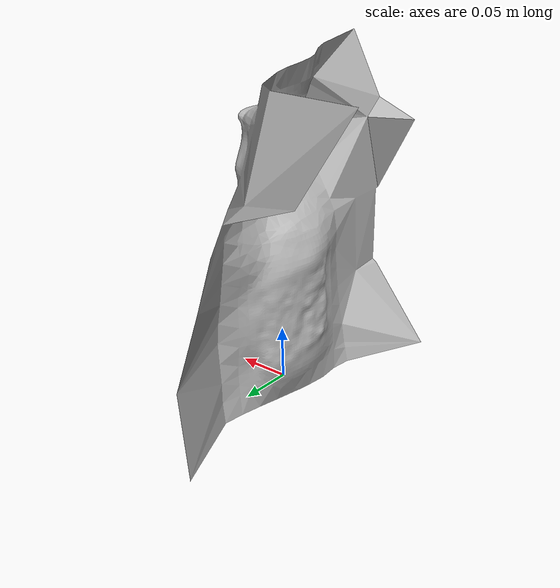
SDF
<?xml version='1.0'?>
<sdf version="1.4">
  <model name="windex">
    <static>false</static>
    <link name="link">
      <inertial>
        <pose>-0.04270418507612416 0.0006751401567584858 0.1551026171128228 0.8268738947145668 0.10950911108108015 -2.8773513822530123</pose>
        <mass>0.905584138520028</mass>
        <inertia>
          <ixx>0.012092499294843344</ixx>
          <ixy>4.401715175311332e-19</ixy>
          <ixz>7.145662604457673e-19</ixz>
          <iyy>0.007399296818931355</iyy>
          <iyz>2.1110740122018635e-18</iyz>
          <izz>0.006621209603735176</izz>
        </inertia>
      </inertial>
      <collision name="collision">
        <geometry>
          <mesh>
            <!-- Use a downsampled mesh for collisions -->
            <uri>model://bigbird/windex/windex_250_collision.obj</uri>
	        </mesh>
        </geometry>
        <surface>
      </surface>
      </collision>
      <visual name="visual">
        <geometry>
          <mesh>
            <uri>model://bigbird/windex/optimized_poisson_texture_mapped_mesh.obj</uri>
	        </mesh>
        </geometry>
        <material>
          <script>
            <uri>model://bigbird/windex/windex.material</uri>
            <name>windex</name>
          </script>
        </material>
      </visual>
    </link>
  </model>
</sdf>
